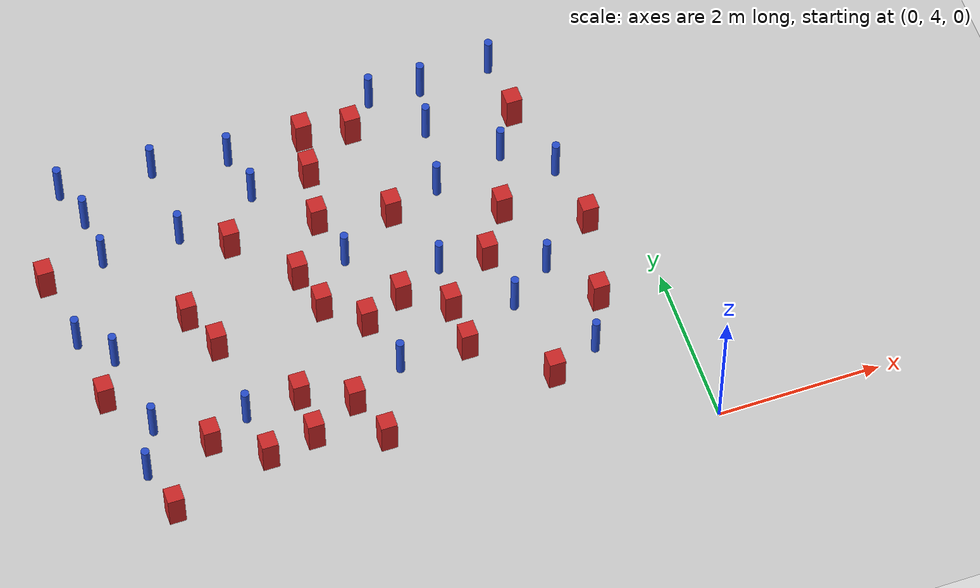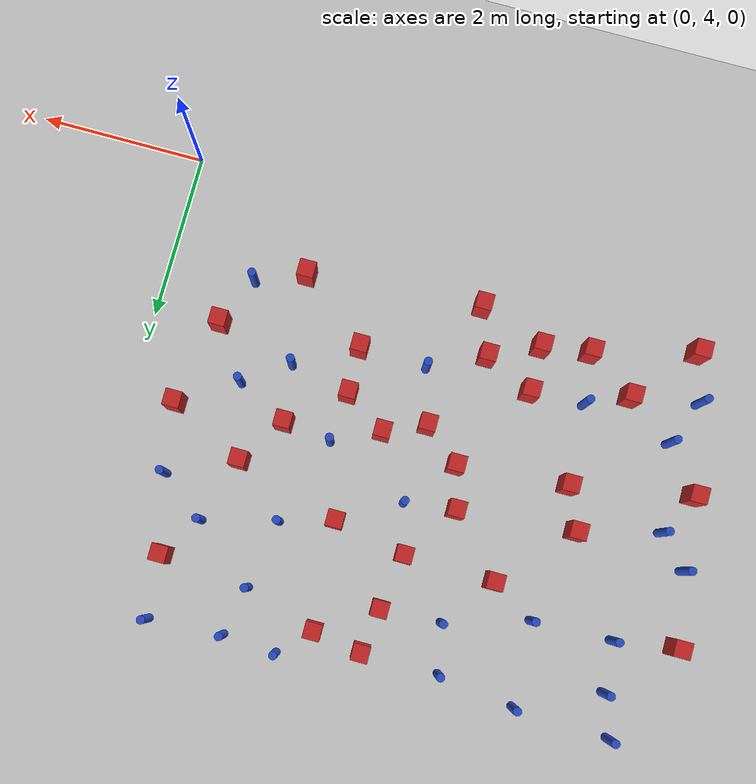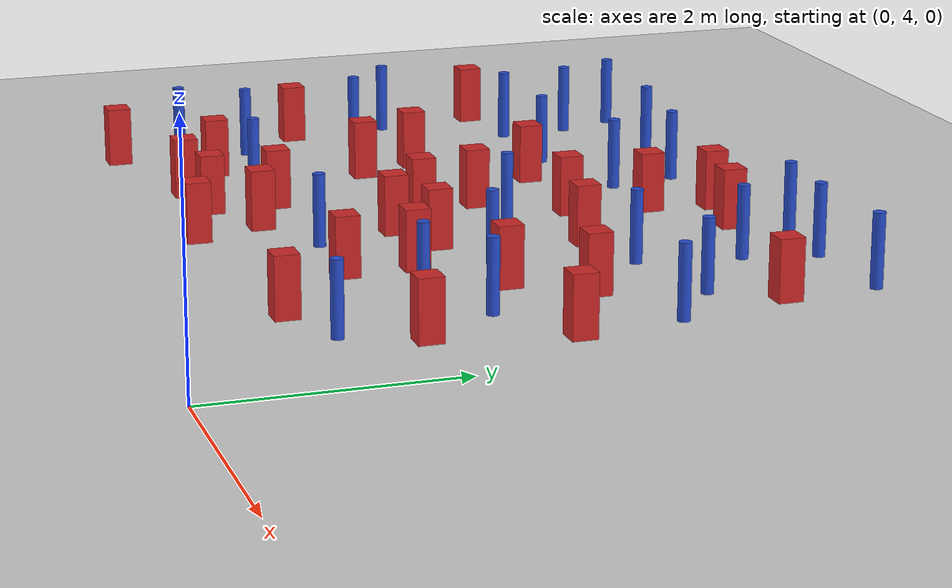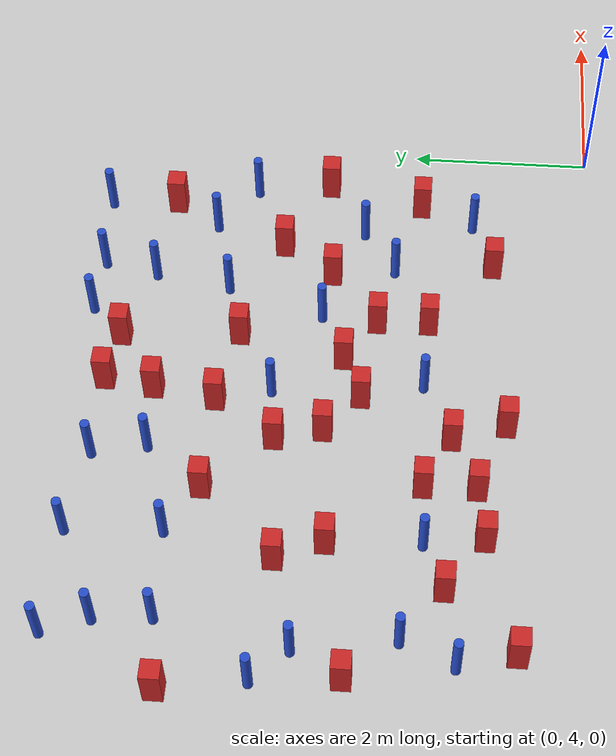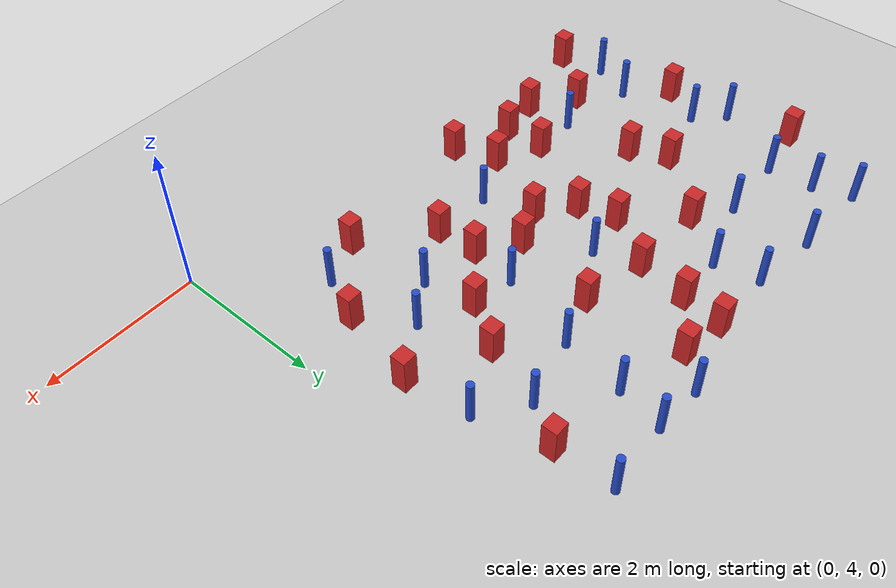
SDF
<sdf version="1.6">
 <world name="default">
  <model name="ground_plane">
   <static>1</static>
   <link name="link">
    <collision name="collision">
     <geometry><plane><normal>0 0 1</normal><size>100 100</size></plane></geometry>
     <surface><friction><ode><mu>100</mu><mu2>50</mu2></ode></friction></surface>
    </collision>
    <visual name="visual">
     <cast_shadows>0</cast_shadows>
     <geometry><plane><normal>0 0 1</normal><size>100 100</size></plane></geometry>
     <material>
      <ambient>1.0 1.0 1.0 1.0</ambient>
      <diffuse>0.8 0.8 0.8 1.0</diffuse>
      <specular>0.01 0.01 0.01 1.000000</specular>
     </material>
    </visual>
   </link>
  </model>
  <model name="pole_obstacle5">
   <static>true</static>
   <pose>-1.9876738178 8.84588879229 -9.47619616065e-06 5.49618799737e-07 2.36310414046e-07 -1.55090534809e-07</pose>
   <link name="link">
    <pose>0 0 0.3 0 -0 0</pose>
    <inertial>
     <mass>1</mass>
     <inertia><ixx>0.145833</ixx><ixy>0</ixy><ixz>0</ixz><iyy>0.145833</iyy><iyz>0</iyz><izz>0.125</izz></inertia>
    </inertial>
    <collision name="collision">
     <geometry><cylinder><radius>0.05</radius><length>.6</length></cylinder></geometry>
    </collision>
    <visual name="visual">
     <geometry><cylinder><radius>0.05</radius><length>.6</length></cylinder></geometry>
     <material>
      <script><name>Gazebo/Blue</name><uri>file://media/materials/scripts/gazebo.material</uri></script>
     </material>
    </visual>
   </link>
  </model>
  <model name="square_post_obstacle7">
   <static>true</static>
   <pose>-3.64312884776 7.99833205098 -6.11067671241e-07 -5.50515727128e-06 -8.79689657224e-07 2.37013304536e-05</pose>
   <link name="link">
    <pose>0 0 0.25 0 -0 0</pose>
    <inertial>
     <mass>100</mass>
     <inertia>
      <ixx>0.166667</ixx>
      <ixy>0</ixy>
      <ixz>0</ixz>
      <iyy>0.166667</iyy>
      <iyz>0</iyz>
      <izz>0.166667</izz>
     </inertia>
    </inertial>
    <collision name="collision"><geometry><box><size>.2 .2 .5</size></box></geometry></collision>
    <visual name="visual">
     <geometry><box><size>.2 .2 .5</size></box></geometry>
     <material>
      <script><name>Gazebo/Red</name><uri>file://media/materials/scripts/gazebo.material</uri></script>
     </material>
    </visual>
   </link>
  </model>
  <model name="square_post_obstacle13">
   <static>true</static>
   <pose>-0.571490426426 6.97470407027 -6.11067671241e-07 -5.50515727128e-06 -8.79689657224e-07 2.37013304536e-05</pose>
   <link name="link">
    <pose>0 0 0.25 0 -0 0</pose>
    <inertial>
     <mass>100</mass>
     <inertia>
      <ixx>0.166667</ixx>
      <ixy>0</ixy>
      <ixz>0</ixz>
      <iyy>0.166667</iyy>
      <iyz>0</iyz>
      <izz>0.166667</izz>
     </inertia>
    </inertial>
    <collision name="collision"><geometry><box><size>.2 .2 .5</size></box></geometry></collision>
    <visual name="visual">
     <geometry><box><size>.2 .2 .5</size></box></geometry>
     <material>
      <script><name>Gazebo/Red</name><uri>file://media/materials/scripts/gazebo.material</uri></script>
     </material>
    </visual>
   </link>
  </model>
  <model name="square_post_obstacle17">
   <static>true</static>
   <pose>-5.74236140276 5.49527199091 -6.11067671241e-07 -5.50515727128e-06 -8.79689657224e-07 2.37013304536e-05</pose>
   <link name="link">
    <pose>0 0 0.25 0 -0 0</pose>
    <inertial>
     <mass>100</mass>
     <inertia>
      <ixx>0.166667</ixx>
      <ixy>0</ixy>
      <ixz>0</ixz>
      <iyy>0.166667</iyy>
      <iyz>0</iyz>
      <izz>0.166667</izz>
     </inertia>
    </inertial>
    <collision name="collision"><geometry><box><size>.2 .2 .5</size></box></geometry></collision>
    <visual name="visual">
     <geometry><box><size>.2 .2 .5</size></box></geometry>
     <material>
      <script><name>Gazebo/Red</name><uri>file://media/materials/scripts/gazebo.material</uri></script>
     </material>
    </visual>
   </link>
  </model>
  <model name="pole_obstacle12">
   <static>true</static>
   <pose>-1.068073735 5.31362220871 -9.47619616065e-06 5.49618799737e-07 2.36310414061e-07 -1.550905348e-07</pose>
   <link name="link">
    <pose>0 0 0.3 0 -0 0</pose>
    <inertial>
     <mass>1</mass>
     <inertia><ixx>0.145833</ixx><ixy>0</ixy><ixz>0</ixz><iyy>0.145833</iyy><iyz>0</iyz><izz>0.125</izz></inertia>
    </inertial>
    <collision name="collision">
     <geometry><cylinder><radius>0.05</radius><length>.6</length></cylinder></geometry>
    </collision>
    <visual name="visual">
     <geometry><cylinder><radius>0.05</radius><length>.6</length></cylinder></geometry>
     <material>
      <script><name>Gazebo/Blue</name><uri>file://media/materials/scripts/gazebo.material</uri></script>
     </material>
    </visual>
   </link>
  </model>
  <model name="square_post_obstacle22">
   <static>true</static>
   <pose>-3.02506036199 6.66986125307 -6.11067671241e-07 -5.50515727128e-06 -8.79689657224e-07 2.37013304536e-05</pose>
   <link name="link">
    <pose>0 0 0.25 0 -0 0</pose>
    <inertial>
     <mass>100</mass>
     <inertia>
      <ixx>0.166667</ixx>
      <ixy>0</ixy>
      <ixz>0</ixz>
      <iyy>0.166667</iyy>
      <iyz>0</iyz>
      <izz>0.166667</izz>
     </inertia>
    </inertial>
    <collision name="collision"><geometry><box><size>.2 .2 .5</size></box></geometry></collision>
    <visual name="visual">
     <geometry><box><size>.2 .2 .5</size></box></geometry>
     <material>
      <script><name>Gazebo/Red</name><uri>file://media/materials/scripts/gazebo.material</uri></script>
     </material>
    </visual>
   </link>
  </model>
  <model name="pole_obstacle31">
   <static>true</static>
   <pose>-1.24656648202 6.54154218155 -9.47619616065e-06 5.49618799737e-07 2.36310414061e-07 -1.550905348e-07</pose>
   <link name="link">
    <pose>0 0 0.3 0 -0 0</pose>
    <inertial>
     <mass>1</mass>
     <inertia><ixx>0.145833</ixx><ixy>0</ixy><ixz>0</ixz><iyy>0.145833</iyy><iyz>0</iyz><izz>0.125</izz></inertia>
    </inertial>
    <collision name="collision">
     <geometry><cylinder><radius>0.05</radius><length>.6</length></cylinder></geometry>
    </collision>
    <visual name="visual">
     <geometry><cylinder><radius>0.05</radius><length>.6</length></cylinder></geometry>
     <material>
      <script><name>Gazebo/Blue</name><uri>file://media/materials/scripts/gazebo.material</uri></script>
     </material>
    </visual>
   </link>
  </model>
  <model name="pole_obstacle38">
   <static>true</static>
   <pose>-5.26253510397 8.34487093791 -9.47619616065e-06 5.49618799737e-07 2.36310414065e-07 -1.55090534796e-07</pose>
   <link name="link">
    <pose>0 0 0.3 0 -0 0</pose>
    <inertial>
     <mass>1</mass>
     <inertia><ixx>0.145833</ixx><ixy>0</ixy><ixz>0</ixz><iyy>0.145833</iyy><iyz>0</iyz><izz>0.125</izz></inertia>
    </inertial>
    <collision name="collision">
     <geometry><cylinder><radius>0.05</radius><length>.6</length></cylinder></geometry>
    </collision>
    <visual name="visual">
     <geometry><cylinder><radius>0.05</radius><length>.6</length></cylinder></geometry>
     <material>
      <script><name>Gazebo/Blue</name><uri>file://media/materials/scripts/gazebo.material</uri></script>
     </material>
    </visual>
   </link>
  </model>
  <model name="pole_obstacle42">
   <static>true</static>
   <pose>-6.47705012342 6.95727942496 -9.47619616065e-06 5.49618799737e-07 2.36310414037e-07 -1.55090534814e-07</pose>
   <link name="link">
    <pose>0 0 0.3 0 -0 0</pose>
    <inertial>
     <mass>1</mass>
     <inertia><ixx>0.145833</ixx><ixy>0</ixy><ixz>0</ixz><iyy>0.145833</iyy><iyz>0</iyz><izz>0.125</izz></inertia>
    </inertial>
    <collision name="collision">
     <geometry><cylinder><radius>0.05</radius><length>.6</length></cylinder></geometry>
    </collision>
    <visual name="visual">
     <geometry><cylinder><radius>0.05</radius><length>.6</length></cylinder></geometry>
     <material>
      <script><name>Gazebo/Blue</name><uri>file://media/materials/scripts/gazebo.material</uri></script>
     </material>
    </visual>
   </link>
  </model>
  <model name="square_post_obstacle40">
   <static>true</static>
   <pose>-4.72908648824 8.02325316709 -6.11067671241e-07 -5.50515727128e-06 -8.79689657224e-07 2.37013304536e-05</pose>
   <link name="link">
    <pose>0 0 0.25 0 -0 0</pose>
    <inertial>
     <mass>100</mass>
     <inertia>
      <ixx>0.166667</ixx>
      <ixy>0</ixy>
      <ixz>0</ixz>
      <iyy>0.166667</iyy>
      <iyz>0</iyz>
      <izz>0.166667</izz>
     </inertia>
    </inertial>
    <collision name="collision"><geometry><box><size>.2 .2 .5</size></box></geometry></collision>
    <visual name="visual">
     <geometry><box><size>.2 .2 .5</size></box></geometry>
     <material>
      <script><name>Gazebo/Red</name><uri>file://media/materials/scripts/gazebo.material</uri></script>
     </material>
    </visual>
   </link>
  </model>
  <model name="pole_obstacle44">
   <static>true</static>
   <pose>-1.24157425304 8.23455370973 -9.47619616065e-06 5.49618799737e-07 2.36310414046e-07 -1.55090534809e-07</pose>
   <link name="link">
    <pose>0 0 0.3 0 -0 0</pose>
    <inertial>
     <mass>1</mass>
     <inertia><ixx>0.145833</ixx><ixy>0</ixy><ixz>0</ixz><iyy>0.145833</iyy><iyz>0</iyz><izz>0.125</izz></inertia>
    </inertial>
    <collision name="collision">
     <geometry><cylinder><radius>0.05</radius><length>.6</length></cylinder></geometry>
    </collision>
    <visual name="visual">
     <geometry><cylinder><radius>0.05</radius><length>.6</length></cylinder></geometry>
     <material>
      <script><name>Gazebo/Blue</name><uri>file://media/materials/scripts/gazebo.material</uri></script>
     </material>
    </visual>
   </link>
  </model>
  <model name="square_post_obstacle50">
   <static>true</static>
   <pose>-0.816443622468 5.90792600944 -6.11067671241e-07 -5.50515727128e-06 -8.79689657224e-07 2.37013304536e-05</pose>
   <link name="link">
    <pose>0 0 0.25 0 -0 0</pose>
    <inertial>
     <mass>100</mass>
     <inertia>
      <ixx>0.166667</ixx>
      <ixy>0</ixy>
      <ixz>0</ixz>
      <iyy>0.166667</iyy>
      <iyz>0</iyz>
      <izz>0.166667</izz>
     </inertia>
    </inertial>
    <collision name="collision"><geometry><box><size>.2 .2 .5</size></box></geometry></collision>
    <visual name="visual">
     <geometry><box><size>.2 .2 .5</size></box></geometry>
     <material>
      <script><name>Gazebo/Red</name><uri>file://media/materials/scripts/gazebo.material</uri></script>
     </material>
    </visual>
   </link>
  </model>
  <model name="square_post_obstacle53">
   <static>true</static>
   <pose>-5.29129763598 6.70580122499 -6.11067671241e-07 -5.50515727128e-06 -8.79689657224e-07 2.37013304536e-05</pose>
   <link name="link">
    <pose>0 0 0.25 0 -0 0</pose>
    <inertial>
     <mass>100</mass>
     <inertia>
      <ixx>0.166667</ixx>
      <ixy>0</ixy>
      <ixz>0</ixz>
      <iyy>0.166667</iyy>
      <iyz>0</iyz>
      <izz>0.166667</izz>
     </inertia>
    </inertial>
    <collision name="collision"><geometry><box><size>.2 .2 .5</size></box></geometry></collision>
    <visual name="visual">
     <geometry><box><size>.2 .2 .5</size></box></geometry>
     <material>
      <script><name>Gazebo/Red</name><uri>file://media/materials/scripts/gazebo.material</uri></script>
     </material>
    </visual>
   </link>
  </model>
  <model name="pole_obstacle52">
   <static>true</static>
   <pose>-2.45928907911 6.94355914943 -9.47619616065e-06 5.49618799738e-07 2.3631041406e-07 -1.55090534801e-07</pose>
   <link name="link">
    <pose>0 0 0.3 0 -0 0</pose>
    <inertial>
     <mass>1</mass>
     <inertia><ixx>0.145833</ixx><ixy>0</ixy><ixz>0</ixz><iyy>0.145833</iyy><iyz>0</iyz><izz>0.125</izz></inertia>
    </inertial>
    <collision name="collision">
     <geometry><cylinder><radius>0.05</radius><length>.6</length></cylinder></geometry>
    </collision>
    <visual name="visual">
     <geometry><cylinder><radius>0.05</radius><length>.6</length></cylinder></geometry>
     <material>
      <script><name>Gazebo/Blue</name><uri>file://media/materials/scripts/gazebo.material</uri></script>
     </material>
    </visual>
   </link>
  </model>
  <model name="square_post_obstacle56">
   <static>true</static>
   <pose>-4.5759710726 5.18996680981 -6.11067671241e-07 -5.50515727128e-06 -8.79689657224e-07 2.37013304536e-05</pose>
   <link name="link">
    <pose>0 0 0.25 0 -0 0</pose>
    <inertial>
     <mass>100</mass>
     <inertia>
      <ixx>0.166667</ixx>
      <ixy>0</ixy>
      <ixz>0</ixz>
      <iyy>0.166667</iyy>
      <iyz>0</iyz>
      <izz>0.166667</izz>
     </inertia>
    </inertial>
    <collision name="collision"><geometry><box><size>.2 .2 .5</size></box></geometry></collision>
    <visual name="visual">
     <geometry><box><size>.2 .2 .5</size></box></geometry>
     <material>
      <script><name>Gazebo/Red</name><uri>file://media/materials/scripts/gazebo.material</uri></script>
     </material>
    </visual>
   </link>
  </model>
  <model name="square_post_obstacle60">
   <static>true</static>
   <pose>-3.9601281426 6.82564002016 -6.11067671241e-07 -5.50515727128e-06 -8.79689657224e-07 2.37013304536e-05</pose>
   <link name="link">
    <pose>0 0 0.25 0 -0 0</pose>
    <inertial>
     <mass>100</mass>
     <inertia>
      <ixx>0.166667</ixx>
      <ixy>0</ixy>
      <ixz>0</ixz>
      <iyy>0.166667</iyy>
      <iyz>0</iyz>
      <izz>0.166667</izz>
     </inertia>
    </inertial>
    <collision name="collision"><geometry><box><size>.2 .2 .5</size></box></geometry></collision>
    <visual name="visual">
     <geometry><box><size>.2 .2 .5</size></box></geometry>
     <material>
      <script><name>Gazebo/Red</name><uri>file://media/materials/scripts/gazebo.material</uri></script>
     </material>
    </visual>
   </link>
  </model>
  <model name="pole_obstacle57">
   <static>true</static>
   <pose>-6.32006095279 5.9100668461 -9.47619616065e-06 5.49618799737e-07 2.36310414037e-07 -1.55090534814e-07</pose>
   <link name="link">
    <pose>0 0 0.3 0 -0 0</pose>
    <inertial>
     <mass>1</mass>
     <inertia><ixx>0.145833</ixx><ixy>0</ixy><ixz>0</ixz><iyy>0.145833</iyy><iyz>0</iyz><izz>0.125</izz></inertia>
    </inertial>
    <collision name="collision">
     <geometry><cylinder><radius>0.05</radius><length>.6</length></cylinder></geometry>
    </collision>
    <visual name="visual">
     <geometry><cylinder><radius>0.05</radius><length>.6</length></cylinder></geometry>
     <material>
      <script><name>Gazebo/Blue</name><uri>file://media/materials/scripts/gazebo.material</uri></script>
     </material>
    </visual>
   </link>
  </model>
  <model name="pole_obstacle71">
   <static>true</static>
   <pose>-0.683955260598 7.814796921 -9.47619616065e-06 5.49618799737e-07 2.36310414065e-07 -1.55090534796e-07</pose>
   <link name="link">
    <pose>0 0 0.3 0 -0 0</pose>
    <inertial>
     <mass>1</mass>
     <inertia><ixx>0.145833</ixx><ixy>0</ixy><ixz>0</ixz><iyy>0.145833</iyy><iyz>0</iyz><izz>0.125</izz></inertia>
    </inertial>
    <collision name="collision">
     <geometry><cylinder><radius>0.05</radius><length>.6</length></cylinder></geometry>
    </collision>
    <visual name="visual">
     <geometry><cylinder><radius>0.05</radius><length>.6</length></cylinder></geometry>
     <material>
      <script><name>Gazebo/Blue</name><uri>file://media/materials/scripts/gazebo.material</uri></script>
     </material>
    </visual>
   </link>
  </model>
  <model name="pole_obstacle76">
   <static>true</static>
   <pose>-6.5542606604 5.35597378822 -9.47619616065e-06 5.49618799737e-07 2.36310414037e-07 -1.55090534814e-07</pose>
   <link name="link">
    <pose>0 0 0.3 0 -0 0</pose>
    <inertial>
     <mass>1</mass>
     <inertia><ixx>0.145833</ixx><ixy>0</ixy><ixz>0</ixz><iyy>0.145833</iyy><iyz>0</iyz><izz>0.125</izz></inertia>
    </inertial>
    <collision name="collision">
     <geometry><cylinder><radius>0.05</radius><length>.6</length></cylinder></geometry>
    </collision>
    <visual name="visual">
     <geometry><cylinder><radius>0.05</radius><length>.6</length></cylinder></geometry>
     <material>
      <script><name>Gazebo/Blue</name><uri>file://media/materials/scripts/gazebo.material</uri></script>
     </material>
    </visual>
   </link>
  </model>
  <model name="square_post_obstacle79">
   <static>true</static>
   <pose>-3.98790024047 5.47207742399 -6.11067671241e-07 -5.50515727128e-06 -8.79689657224e-07 2.37013304536e-05</pose>
   <link name="link">
    <pose>0 0 0.25 0 -0 0</pose>
    <inertial>
     <mass>100</mass>
     <inertia>
      <ixx>0.166667</ixx>
      <ixy>0</ixy>
      <ixz>0</ixz>
      <iyy>0.166667</iyy>
      <iyz>0</iyz>
      <izz>0.166667</izz>
     </inertia>
    </inertial>
    <collision name="collision"><geometry><box><size>.2 .2 .5</size></box></geometry></collision>
    <visual name="visual">
     <geometry><box><size>.2 .2 .5</size></box></geometry>
     <material>
      <script><name>Gazebo/Red</name><uri>file://media/materials/scripts/gazebo.material</uri></script>
     </material>
    </visual>
   </link>
  </model>
  <model name="pole_obstacle87">
   <static>true</static>
   <pose>-6.22478200343 8.3180145846 -9.47619616065e-06 5.49618799737e-07 2.36310414065e-07 -1.55090534796e-07</pose>
   <link name="link">
    <pose>0 0 0.3 0 -0 0</pose>
    <inertial>
     <mass>1</mass>
     <inertia><ixx>0.145833</ixx><ixy>0</ixy><ixz>0</ixz><iyy>0.145833</iyy><iyz>0</iyz><izz>0.125</izz></inertia>
    </inertial>
    <collision name="collision">
     <geometry><cylinder><radius>0.05</radius><length>.6</length></cylinder></geometry>
    </collision>
    <visual name="visual">
     <geometry><cylinder><radius>0.05</radius><length>.6</length></cylinder></geometry>
     <material>
      <script><name>Gazebo/Blue</name><uri>file://media/materials/scripts/gazebo.material</uri></script>
     </material>
    </visual>
   </link>
  </model>
  <model name="pole_obstacle88">
   <static>true</static>
   <pose>-3.32723464884 5.7886832403 -9.4761961606e-06 5.49618799729e-07 2.36310414006e-07 -1.55090534822e-07</pose>
   <link name="link">
    <pose>0 0 0.3 0 -0 0</pose>
    <inertial>
     <mass>1</mass>
     <inertia><ixx>0.145833</ixx><ixy>0</ixy><ixz>0</ixz><iyy>0.145833</iyy><iyz>0</iyz><izz>0.125</izz></inertia>
    </inertial>
    <collision name="collision">
     <geometry><cylinder><radius>0.05</radius><length>.6</length></cylinder></geometry>
    </collision>
    <visual name="visual">
     <geometry><cylinder><radius>0.05</radius><length>.6</length></cylinder></geometry>
     <material>
      <script><name>Gazebo/Blue</name><uri>file://media/materials/scripts/gazebo.material</uri></script>
     </material>
    </visual>
   </link>
  </model>
  <model name="pole_obstacle91">
   <static>true</static>
   <pose>-6.27176562924 8.91925616962 -9.47619616065e-06 5.49618799737e-07 2.36310414065e-07 -1.55090534796e-07</pose>
   <link name="link">
    <pose>0 0 0.3 0 -0 0</pose>
    <inertial>
     <mass>1</mass>
     <inertia><ixx>0.145833</ixx><ixy>0</ixy><ixz>0</ixz><iyy>0.145833</iyy><iyz>0</iyz><izz>0.125</izz></inertia>
    </inertial>
    <collision name="collision">
     <geometry><cylinder><radius>0.05</radius><length>.6</length></cylinder></geometry>
    </collision>
    <visual name="visual">
     <geometry><cylinder><radius>0.05</radius><length>.6</length></cylinder></geometry>
     <material>
      <script><name>Gazebo/Blue</name><uri>file://media/materials/scripts/gazebo.material</uri></script>
     </material>
    </visual>
   </link>
  </model>
  <model name="pole_obstacle92">
   <static>true</static>
   <pose>-1.85955419458 9.44289425128 -9.47619616065e-06 5.49618799737e-07 2.36310414046e-07 -1.55090534809e-07</pose>
   <link name="link">
    <pose>0 0 0.3 0 -0 0</pose>
    <inertial>
     <mass>1</mass>
     <inertia><ixx>0.145833</ixx><ixy>0</ixy><ixz>0</ixz><iyy>0.145833</iyy><iyz>0</iyz><izz>0.125</izz></inertia>
    </inertial>
    <collision name="collision">
     <geometry><cylinder><radius>0.05</radius><length>.6</length></cylinder></geometry>
    </collision>
    <visual name="visual">
     <geometry><cylinder><radius>0.05</radius><length>.6</length></cylinder></geometry>
     <material>
      <script><name>Gazebo/Blue</name><uri>file://media/materials/scripts/gazebo.material</uri></script>
     </material>
    </visual>
   </link>
  </model>
  <model name="square_post_obstacle87">
   <static>true</static>
   <pose>-2.51712326753 6.33169471152 -6.11067671241e-07 -5.50515727128e-06 -8.79689657224e-07 2.37013304536e-05</pose>
   <link name="link">
    <pose>0 0 0.25 0 -0 0</pose>
    <inertial>
     <mass>100</mass>
     <inertia>
      <ixx>0.166667</ixx>
      <ixy>0</ixy>
      <ixz>0</ixz>
      <iyy>0.166667</iyy>
      <iyz>0</iyz>
      <izz>0.166667</izz>
     </inertia>
    </inertial>
    <collision name="collision"><geometry><box><size>.2 .2 .5</size></box></geometry></collision>
    <visual name="visual">
     <geometry><box><size>.2 .2 .5</size></box></geometry>
     <material>
      <script><name>Gazebo/Red</name><uri>file://media/materials/scripts/gazebo.material</uri></script>
     </material>
    </visual>
   </link>
  </model>
  <model name="pole_obstacle97">
   <static>true</static>
   <pose>-5.3037369265 9.35501213935 -9.47619616065e-06 5.49618799737e-07 2.36310414065e-07 -1.55090534796e-07</pose>
   <link name="link">
    <pose>0 0 0.3 0 -0 0</pose>
    <inertial>
     <mass>1</mass>
     <inertia><ixx>0.145833</ixx><ixy>0</ixy><ixz>0</ixz><iyy>0.145833</iyy><iyz>0</iyz><izz>0.125</izz></inertia>
    </inertial>
    <collision name="collision">
     <geometry><cylinder><radius>0.05</radius><length>.6</length></cylinder></geometry>
    </collision>
    <visual name="visual">
     <geometry><cylinder><radius>0.05</radius><length>.6</length></cylinder></geometry>
     <material>
      <script><name>Gazebo/Blue</name><uri>file://media/materials/scripts/gazebo.material</uri></script>
     </material>
    </visual>
   </link>
  </model>
  <model name="pole_obstacle110">
   <static>true</static>
   <pose>-4.26408805013 8.64378990391 -9.47619616065e-06 5.49618799737e-07 2.36310414065e-07 -1.55090534796e-07</pose>
   <link name="link">
    <pose>0 0 0.3 0 -0 0</pose>
    <inertial>
     <mass>1</mass>
     <inertia><ixx>0.145833</ixx><ixy>0</ixy><ixz>0</ixz><iyy>0.145833</iyy><iyz>0</iyz><izz>0.125</izz></inertia>
    </inertial>
    <collision name="collision">
     <geometry><cylinder><radius>0.05</radius><length>.6</length></cylinder></geometry>
    </collision>
    <visual name="visual">
     <geometry><cylinder><radius>0.05</radius><length>.6</length></cylinder></geometry>
     <material>
      <script><name>Gazebo/Blue</name><uri>file://media/materials/scripts/gazebo.material</uri></script>
     </material>
    </visual>
   </link>
  </model>
  <model name="square_post_obstacle99">
   <static>true</static>
   <pose>-4.09479227088 7.33348866477 -6.11067671241e-07 -5.50515727128e-06 -8.79689657224e-07 2.37013304536e-05</pose>
   <link name="link">
    <pose>0 0 0.25 0 -0 0</pose>
    <inertial>
     <mass>100</mass>
     <inertia>
      <ixx>0.166667</ixx>
      <ixy>0</ixy>
      <ixz>0</ixz>
      <iyy>0.166667</iyy>
      <iyz>0</iyz>
      <izz>0.166667</izz>
     </inertia>
    </inertial>
    <collision name="collision"><geometry><box><size>.2 .2 .5</size></box></geometry></collision>
    <visual name="visual">
     <geometry><box><size>.2 .2 .5</size></box></geometry>
     <material>
      <script><name>Gazebo/Red</name><uri>file://media/materials/scripts/gazebo.material</uri></script>
     </material>
    </visual>
   </link>
  </model>
  <model name="square_post_obstacle103">
   <static>true</static>
   <pose>-2.85878793254 9.11552349727 -6.11067671241e-07 -5.50515727128e-06 -8.79689657224e-07 2.37013304536e-05</pose>
   <link name="link">
    <pose>0 0 0.25 0 -0 0</pose>
    <inertial>
     <mass>100</mass>
     <inertia>
      <ixx>0.166667</ixx>
      <ixy>0</ixy>
      <ixz>0</ixz>
      <iyy>0.166667</iyy>
      <iyz>0</iyz>
      <izz>0.166667</izz>
     </inertia>
    </inertial>
    <collision name="collision"><geometry><box><size>.2 .2 .5</size></box></geometry></collision>
    <visual name="visual">
     <geometry><box><size>.2 .2 .5</size></box></geometry>
     <material>
      <script><name>Gazebo/Red</name><uri>file://media/materials/scripts/gazebo.material</uri></script>
     </material>
    </visual>
   </link>
  </model>
  <model name="pole_obstacle121">
   <static>true</static>
   <pose>-4.38298074194 9.22289108084 -9.47619616065e-06 5.49618799737e-07 2.36310414065e-07 -1.55090534796e-07</pose>
   <link name="link">
    <pose>0 0 0.3 0 -0 0</pose>
    <inertial>
     <mass>1</mass>
     <inertia><ixx>0.145833</ixx><ixy>0</ixy><ixz>0</ixz><iyy>0.145833</iyy><iyz>0</iyz><izz>0.125</izz></inertia>
    </inertial>
    <collision name="collision">
     <geometry><cylinder><radius>0.05</radius><length>.6</length></cylinder></geometry>
    </collision>
    <visual name="visual">
     <geometry><cylinder><radius>0.05</radius><length>.6</length></cylinder></geometry>
     <material>
      <script><name>Gazebo/Blue</name><uri>file://media/materials/scripts/gazebo.material</uri></script>
     </material>
    </visual>
   </link>
  </model>
  <model name="square_post_obstacle120">
   <static>true</static>
   <pose>-2.76711007917 7.82119560167 -6.11067671241e-07 -5.50515727128e-06 -8.79689657224e-07 2.37013304536e-05</pose>
   <link name="link">
    <pose>0 0 0.25 0 -0 0</pose>
    <inertial>
     <mass>100</mass>
     <inertia>
      <ixx>0.166667</ixx>
      <ixy>0</ixy>
      <ixz>0</ixz>
      <iyy>0.166667</iyy>
      <iyz>0</iyz>
      <izz>0.166667</izz>
     </inertia>
    </inertial>
    <collision name="collision"><geometry><box><size>.2 .2 .5</size></box></geometry></collision>
    <visual name="visual">
     <geometry><box><size>.2 .2 .5</size></box></geometry>
     <material>
      <script><name>Gazebo/Red</name><uri>file://media/materials/scripts/gazebo.material</uri></script>
     </material>
    </visual>
   </link>
  </model>
  <model name="square_post_obstacle122">
   <static>true</static>
   <pose>-3.78546883008 4.89981274744 -6.11067671241e-07 -5.50515727128e-06 -8.79689657224e-07 2.37013304536e-05</pose>
   <link name="link">
    <pose>0 0 0.25 0 -0 0</pose>
    <inertial>
     <mass>100</mass>
     <inertia>
      <ixx>0.166667</ixx>
      <ixy>0</ixy>
      <ixz>0</ixz>
      <iyy>0.166667</iyy>
      <iyz>0</iyz>
      <izz>0.166667</izz>
     </inertia>
    </inertial>
    <collision name="collision"><geometry><box><size>.2 .2 .5</size></box></geometry></collision>
    <visual name="visual">
     <geometry><box><size>.2 .2 .5</size></box></geometry>
     <material>
      <script><name>Gazebo/Red</name><uri>file://media/materials/scripts/gazebo.material</uri></script>
     </material>
    </visual>
   </link>
  </model>
  <model name="square_post_obstacle126">
   <static>true</static>
   <pose>-4.57988446247 5.75037690644 -6.11067671241e-07 -5.50515727128e-06 -8.79689657224e-07 2.37013304536e-05</pose>
   <link name="link">
    <pose>0 0 0.25 0 -0 0</pose>
    <inertial>
     <mass>100</mass>
     <inertia>
      <ixx>0.166667</ixx>
      <ixy>0</ixy>
      <ixz>0</ixz>
      <iyy>0.166667</iyy>
      <iyz>0</iyz>
      <izz>0.166667</izz>
     </inertia>
    </inertial>
    <collision name="collision"><geometry><box><size>.2 .2 .5</size></box></geometry></collision>
    <visual name="visual">
     <geometry><box><size>.2 .2 .5</size></box></geometry>
     <material>
      <script><name>Gazebo/Red</name><uri>file://media/materials/scripts/gazebo.material</uri></script>
     </material>
    </visual>
   </link>
  </model>
  <model name="square_post_obstacle131">
   <static>true</static>
   <pose>-0.922594318811 8.73279701796 -6.11067671241e-07 -5.50515727128e-06 -8.79689657224e-07 2.37013304536e-05</pose>
   <link name="link">
    <pose>0 0 0.25 0 -0 0</pose>
    <inertial>
     <mass>100</mass>
     <inertia>
      <ixx>0.166667</ixx>
      <ixy>0</ixy>
      <ixz>0</ixz>
      <iyy>0.166667</iyy>
      <iyz>0</iyz>
      <izz>0.166667</izz>
     </inertia>
    </inertial>
    <collision name="collision"><geometry><box><size>.2 .2 .5</size></box></geometry></collision>
    <visual name="visual">
     <geometry><box><size>.2 .2 .5</size></box></geometry>
     <material>
      <script><name>Gazebo/Red</name><uri>file://media/materials/scripts/gazebo.material</uri></script>
     </material>
    </visual>
   </link>
  </model>
  <model name="square_post_obstacle133">
   <static>true</static>
   <pose>-5.50497715972 7.20954863813 -6.11067671241e-07 -5.50515727128e-06 -8.79689657224e-07 2.37013304536e-05</pose>
   <link name="link">
    <pose>0 0 0.25 0 -0 0</pose>
    <inertial>
     <mass>100</mass>
     <inertia>
      <ixx>0.166667</ixx>
      <ixy>0</ixy>
      <ixz>0</ixz>
      <iyy>0.166667</iyy>
      <iyz>0</iyz>
      <izz>0.166667</izz>
     </inertia>
    </inertial>
    <collision name="collision"><geometry><box><size>.2 .2 .5</size></box></geometry></collision>
    <visual name="visual">
     <geometry><box><size>.2 .2 .5</size></box></geometry>
     <material>
      <script><name>Gazebo/Red</name><uri>file://media/materials/scripts/gazebo.material</uri></script>
     </material>
    </visual>
   </link>
  </model>
  <model name="pole_obstacle144">
   <static>true</static>
   <pose>-6.44532846928 9.40898575022 -9.47619616065e-06 5.49618799737e-07 2.36310414065e-07 -1.55090534796e-07</pose>
   <link name="link">
    <pose>0 0 0.3 0 -0 0</pose>
    <inertial>
     <mass>1</mass>
     <inertia><ixx>0.145833</ixx><ixy>0</ixy><ixz>0</ixz><iyy>0.145833</iyy><iyz>0</iyz><izz>0.125</izz></inertia>
    </inertial>
    <collision name="collision">
     <geometry><cylinder><radius>0.05</radius><length>.6</length></cylinder></geometry>
    </collision>
    <visual name="visual">
     <geometry><cylinder><radius>0.05</radius><length>.6</length></cylinder></geometry>
     <material>
      <script><name>Gazebo/Blue</name><uri>file://media/materials/scripts/gazebo.material</uri></script>
     </material>
    </visual>
   </link>
  </model>
  <model name="square_post_obstacle153">
   <static>true</static>
   <pose>-1.49607481045 7.43780795278 -6.11067671241e-07 -5.50515727128e-06 -8.79689657224e-07 2.37013304536e-05</pose>
   <link name="link">
    <pose>0 0 0.25 0 -0 0</pose>
    <inertial>
     <mass>100</mass>
     <inertia>
      <ixx>0.166667</ixx>
      <ixy>0</ixy>
      <ixz>0</ixz>
      <iyy>0.166667</iyy>
      <iyz>0</iyz>
      <izz>0.166667</izz>
     </inertia>
    </inertial>
    <collision name="collision"><geometry><box><size>.2 .2 .5</size></box></geometry></collision>
    <visual name="visual">
     <geometry><box><size>.2 .2 .5</size></box></geometry>
     <material>
      <script><name>Gazebo/Red</name><uri>file://media/materials/scripts/gazebo.material</uri></script>
     </material>
    </visual>
   </link>
  </model>
  <model name="pole_obstacle160">
   <static>true</static>
   <pose>-1.77650495085 6.17338525669 -9.47619616065e-06 5.49618799737e-07 2.36310414061e-07 -1.550905348e-07</pose>
   <link name="link">
    <pose>0 0 0.3 0 -0 0</pose>
    <inertial>
     <mass>1</mass>
     <inertia><ixx>0.145833</ixx><ixy>0</ixy><ixz>0</ixz><iyy>0.145833</iyy><iyz>0</iyz><izz>0.125</izz></inertia>
    </inertial>
    <collision name="collision">
     <geometry><cylinder><radius>0.05</radius><length>.6</length></cylinder></geometry>
    </collision>
    <visual name="visual">
     <geometry><cylinder><radius>0.05</radius><length>.6</length></cylinder></geometry>
     <material>
      <script><name>Gazebo/Blue</name><uri>file://media/materials/scripts/gazebo.material</uri></script>
     </material>
    </visual>
   </link>
  </model>
  <model name="square_post_obstacle154">
   <static>true</static>
   <pose>-6.9601488392 8.20452973619 -6.11067671241e-07 -5.50515727128e-06 -8.79689657224e-07 2.37013304536e-05</pose>
   <link name="link">
    <pose>0 0 0.25 0 -0 0</pose>
    <inertial>
     <mass>100</mass>
     <inertia>
      <ixx>0.166667</ixx>
      <ixy>0</ixy>
      <ixz>0</ixz>
      <iyy>0.166667</iyy>
      <iyz>0</iyz>
      <izz>0.166667</izz>
     </inertia>
    </inertial>
    <collision name="collision"><geometry><box><size>.2 .2 .5</size></box></geometry></collision>
    <visual name="visual">
     <geometry><box><size>.2 .2 .5</size></box></geometry>
     <material>
      <script><name>Gazebo/Red</name><uri>file://media/materials/scripts/gazebo.material</uri></script>
     </material>
    </visual>
   </link>
  </model>
  <model name="square_post_obstacle156">
   <static>true</static>
   <pose>-1.66053238759 5.07725928215 -6.11067671241e-07 -5.50515727128e-06 -8.79689657224e-07 2.37013304536e-05</pose>
   <link name="link">
    <pose>0 0 0.25 0 -0 0</pose>
    <inertial>
     <mass>100</mass>
     <inertia>
      <ixx>0.166667</ixx>
      <ixy>0</ixy>
      <ixz>0</ixz>
      <iyy>0.166667</iyy>
      <iyz>0</iyz>
      <izz>0.166667</izz>
     </inertia>
    </inertial>
    <collision name="collision"><geometry><box><size>.2 .2 .5</size></box></geometry></collision>
    <visual name="visual">
     <geometry><box><size>.2 .2 .5</size></box></geometry>
     <material>
      <script><name>Gazebo/Red</name><uri>file://media/materials/scripts/gazebo.material</uri></script>
     </material>
    </visual>
   </link>
  </model>
  <model name="square_post_obstacle157">
   <static>true</static>
   <pose>-3.51598821223 6.45480846181 -6.11067671241e-07 -5.50515727128e-06 -8.79689657224e-07 2.37013304536e-05</pose>
   <link name="link">
    <pose>0 0 0.25 0 -0 0</pose>
    <inertial>
     <mass>100</mass>
     <inertia>
      <ixx>0.166667</ixx>
      <ixy>0</ixy>
      <ixz>0</ixz>
      <iyy>0.166667</iyy>
      <iyz>0</iyz>
      <izz>0.166667</izz>
     </inertia>
    </inertial>
    <collision name="collision"><geometry><box><size>.2 .2 .5</size></box></geometry></collision>
    <visual name="visual">
     <geometry><box><size>.2 .2 .5</size></box></geometry>
     <material>
      <script><name>Gazebo/Red</name><uri>file://media/materials/scripts/gazebo.material</uri></script>
     </material>
    </visual>
   </link>
  </model>
  <model name="square_post_obstacle162">
   <static>true</static>
   <pose>-5.16181933622 5.09980897736 -6.11067671241e-07 -5.50515727128e-06 -8.79689657224e-07 2.37013304536e-05</pose>
   <link name="link">
    <pose>0 0 0.25 0 -0 0</pose>
    <inertial>
     <mass>100</mass>
     <inertia>
      <ixx>0.166667</ixx>
      <ixy>0</ixy>
      <ixz>0</ixz>
      <iyy>0.166667</iyy>
      <iyz>0</iyz>
      <izz>0.166667</izz>
     </inertia>
    </inertial>
    <collision name="collision"><geometry><box><size>.2 .2 .5</size></box></geometry></collision>
    <visual name="visual">
     <geometry><box><size>.2 .2 .5</size></box></geometry>
     <material>
      <script><name>Gazebo/Red</name><uri>file://media/materials/scripts/gazebo.material</uri></script>
     </material>
    </visual>
   </link>
  </model>
  <model name="square_post_obstacle165">
   <static>true</static>
   <pose>-6.3953735584 4.76882363099 -6.11067671241e-07 -5.50515727128e-06 -8.79689657224e-07 2.37013304536e-05</pose>
   <link name="link">
    <pose>0 0 0.25 0 -0 0</pose>
    <inertial>
     <mass>100</mass>
     <inertia>
      <ixx>0.166667</ixx>
      <ixy>0</ixy>
      <ixz>0</ixz>
      <iyy>0.166667</iyy>
      <iyz>0</iyz>
      <izz>0.166667</izz>
     </inertia>
    </inertial>
    <collision name="collision"><geometry><box><size>.2 .2 .5</size></box></geometry></collision>
    <visual name="visual">
     <geometry><box><size>.2 .2 .5</size></box></geometry>
     <material>
      <script><name>Gazebo/Red</name><uri>file://media/materials/scripts/gazebo.material</uri></script>
     </material>
    </visual>
   </link>
  </model>
  <model name="square_post_obstacle167">
   <static>true</static>
   <pose>-3.44992414175 9.20833947235 -6.11067671241e-07 -5.50515727128e-06 -8.79689657224e-07 2.37013304536e-05</pose>
   <link name="link">
    <pose>0 0 0.25 0 -0 0</pose>
    <inertial>
     <mass>100</mass>
     <inertia>
      <ixx>0.166667</ixx>
      <ixy>0</ixy>
      <ixz>0</ixz>
      <iyy>0.166667</iyy>
      <iyz>0</iyz>
      <izz>0.166667</izz>
     </inertia>
    </inertial>
    <collision name="collision"><geometry><box><size>.2 .2 .5</size></box></geometry></collision>
    <visual name="visual">
     <geometry><box><size>.2 .2 .5</size></box></geometry>
     <material>
      <script><name>Gazebo/Red</name><uri>file://media/materials/scripts/gazebo.material</uri></script>
     </material>
    </visual>
   </link>
  </model>
  <model name="square_post_obstacle170">
   <static>true</static>
   <pose>-3.53252428477 8.67221030374 -6.11067671241e-07 -5.50515727128e-06 -8.79689657224e-07 2.37013304536e-05</pose>
   <link name="link">
    <pose>0 0 0.25 0 -0 0</pose>
    <inertial>
     <mass>100</mass>
     <inertia>
      <ixx>0.166667</ixx>
      <ixy>0</ixy>
      <ixz>0</ixz>
      <iyy>0.166667</iyy>
      <iyz>0</iyz>
      <izz>0.166667</izz>
     </inertia>
    </inertial>
    <collision name="collision"><geometry><box><size>.2 .2 .5</size></box></geometry></collision>
    <visual name="visual">
     <geometry><box><size>.2 .2 .5</size></box></geometry>
     <material>
      <script><name>Gazebo/Red</name><uri>file://media/materials/scripts/gazebo.material</uri></script>
     </material>
    </visual>
   </link>
  </model>
  <model name="square_post_obstacle171">
   <static>true</static>
   <pose>-1.87668150059 6.86681527786 -6.11067671241e-07 -5.50515727128e-06 -8.79689657224e-07 2.37013304536e-05</pose>
   <link name="link">
    <pose>0 0 0.25 0 -0 0</pose>
    <inertial>
     <mass>100</mass>
     <inertia>
      <ixx>0.166667</ixx>
      <ixy>0</ixy>
      <ixz>0</ixz>
      <iyy>0.166667</iyy>
      <iyz>0</iyz>
      <izz>0.166667</izz>
     </inertia>
    </inertial>
    <collision name="collision"><geometry><box><size>.2 .2 .5</size></box></geometry></collision>
    <visual name="visual">
     <geometry><box><size>.2 .2 .5</size></box></geometry>
     <material>
      <script><name>Gazebo/Red</name><uri>file://media/materials/scripts/gazebo.material</uri></script>
     </material>
    </visual>
   </link>
  </model>
  <model name="pole_obstacle185">
   <static>true</static>
   <pose>-2.12895100246 8.01032049386 -9.47619616065e-06 5.49618799737e-07 2.3631041406e-07 -1.55090534799e-07</pose>
   <link name="link">
    <pose>0 0 0.3 0 -0 0</pose>
    <inertial>
     <mass>1</mass>
     <inertia><ixx>0.145833</ixx><ixy>0</ixy><ixz>0</ixz><iyy>0.145833</iyy><iyz>0</iyz><izz>0.125</izz></inertia>
    </inertial>
    <collision name="collision">
     <geometry><cylinder><radius>0.05</radius><length>.6</length></cylinder></geometry>
    </collision>
    <visual name="visual">
     <geometry><cylinder><radius>0.05</radius><length>.6</length></cylinder></geometry>
     <material>
      <script><name>Gazebo/Blue</name><uri>file://media/materials/scripts/gazebo.material</uri></script>
     </material>
    </visual>
   </link>
  </model>
  <model name="square_post_obstacle175">
   <static>true</static>
   <pose>-2.50312139834 5.76779043555 -6.11067671241e-07 -5.50515727128e-06 -8.79689657224e-07 2.37013304536e-05</pose>
   <link name="link">
    <pose>0 0 0.25 0 -0 0</pose>
    <inertial>
     <mass>100</mass>
     <inertia>
      <ixx>0.166667</ixx>
      <ixy>0</ixy>
      <ixz>0</ixz>
      <iyy>0.166667</iyy>
      <iyz>0</iyz>
      <izz>0.166667</izz>
     </inertia>
    </inertial>
    <collision name="collision"><geometry><box><size>.2 .2 .5</size></box></geometry></collision>
    <visual name="visual">
     <geometry><box><size>.2 .2 .5</size></box></geometry>
     <material>
      <script><name>Gazebo/Red</name><uri>file://media/materials/scripts/gazebo.material</uri></script>
     </material>
    </visual>
   </link>
  </model>
  <model name="square_post_obstacle178">
   <static>true</static>
   <pose>-6.74184391555 6.44155104597 -6.11067671241e-07 -5.50515727128e-06 -8.79689657224e-07 2.37013304536e-05</pose>
   <link name="link">
    <pose>0 0 0.25 0 -0 0</pose>
    <inertial>
     <mass>100</mass>
     <inertia>
      <ixx>0.166667</ixx>
      <ixy>0</ixy>
      <ixz>0</ixz>
      <iyy>0.166667</iyy>
      <iyz>0</iyz>
      <izz>0.166667</izz>
     </inertia>
    </inertial>
    <collision name="collision"><geometry><box><size>.2 .2 .5</size></box></geometry></collision>
    <visual name="visual">
     <geometry><box><size>.2 .2 .5</size></box></geometry>
     <material>
      <script><name>Gazebo/Red</name><uri>file://media/materials/scripts/gazebo.material</uri></script>
     </material>
    </visual>
   </link>
  </model>
  <model name="pole_obstacle195">
   <static>true</static>
   <pose>-6.82816078482 7.32615659486 -9.47619616065e-06 5.49618799737e-07 2.36310414037e-07 -1.55090534814e-07</pose>
   <link name="link">
    <pose>0 0 0.3 0 -0 0</pose>
    <inertial>
     <mass>1</mass>
     <inertia><ixx>0.145833</ixx><ixy>0</ixy><ixz>0</ixz><iyy>0.145833</iyy><iyz>0</iyz><izz>0.125</izz></inertia>
    </inertial>
    <collision name="collision">
     <geometry><cylinder><radius>0.05</radius><length>.6</length></cylinder></geometry>
    </collision>
    <visual name="visual">
     <geometry><cylinder><radius>0.05</radius><length>.6</length></cylinder></geometry>
     <material>
      <script><name>Gazebo/Blue</name><uri>file://media/materials/scripts/gazebo.material</uri></script>
     </material>
    </visual>
   </link>
  </model>
  <model name="pole_obstacle197">
   <static>true</static>
   <pose>-2.50508405966 9.48436480235 -9.4761961606e-06 5.49618799729e-07 2.36310414e-07 -1.55090534824e-07</pose>
   <link name="link">
    <pose>0 0 0.3 0 -0 0</pose>
    <inertial>
     <mass>1</mass>
     <inertia><ixx>0.145833</ixx><ixy>0</ixy><ixz>0</ixz><iyy>0.145833</iyy><iyz>0</iyz><izz>0.125</izz></inertia>
    </inertial>
    <collision name="collision">
     <geometry><cylinder><radius>0.05</radius><length>.6</length></cylinder></geometry>
    </collision>
    <visual name="visual">
     <geometry><cylinder><radius>0.05</radius><length>.6</length></cylinder></geometry>
     <material>
      <script><name>Gazebo/Blue</name><uri>file://media/materials/scripts/gazebo.material</uri></script>
     </material>
    </visual>
   </link>
  </model>
  <model name="pole_obstacle198">
   <static>true</static>
   <pose>-0.963401612009 9.49742202194 -9.47619616065e-06 5.49618799737e-07 2.36310414038e-07 -1.55090534814e-07</pose>
   <link name="link">
    <pose>0 0 0.3 0 -0 0</pose>
    <inertial>
     <mass>1</mass>
     <inertia><ixx>0.145833</ixx><ixy>0</ixy><ixz>0</ixz><iyy>0.145833</iyy><iyz>0</iyz><izz>0.125</izz></inertia>
    </inertial>
    <collision name="collision">
     <geometry><cylinder><radius>0.05</radius><length>.6</length></cylinder></geometry>
    </collision>
    <visual name="visual">
     <geometry><cylinder><radius>0.05</radius><length>.6</length></cylinder></geometry>
     <material>
      <script><name>Gazebo/Blue</name><uri>file://media/materials/scripts/gazebo.material</uri></script>
     </material>
    </visual>
   </link>
  </model>
  <model name="pole_obstacle202">
   <static>true</static>
   <pose>-3.48492863466 7.41316172263 -9.47619616065e-06 5.49618799738e-07 2.3631041406e-07 -1.55090534801e-07</pose>
   <link name="link">
    <pose>0 0 0.3 0 -0 0</pose>
    <inertial>
     <mass>1</mass>
     <inertia><ixx>0.145833</ixx><ixy>0</ixy><ixz>0</ixz><iyy>0.145833</iyy><iyz>0</iyz><izz>0.125</izz></inertia>
    </inertial>
    <collision name="collision">
     <geometry><cylinder><radius>0.05</radius><length>.6</length></cylinder></geometry>
    </collision>
    <visual name="visual">
     <geometry><cylinder><radius>0.05</radius><length>.6</length></cylinder></geometry>
     <material>
      <script><name>Gazebo/Blue</name><uri>file://media/materials/scripts/gazebo.material</uri></script>
     </material>
    </visual>
   </link>
  </model>
  <model name="pole_obstacle208">
   <static>true</static>
   <pose>-5.24193708365 5.72195232649 -9.47619616065e-06 5.49618799737e-07 2.36310414037e-07 -1.55090534814e-07</pose>
   <link name="link">
    <pose>0 0 0.3 0 -0 0</pose>
    <inertial>
     <mass>1</mass>
     <inertia><ixx>0.145833</ixx><ixy>0</ixy><ixz>0</ixz><iyy>0.145833</iyy><iyz>0</iyz><izz>0.125</izz></inertia>
    </inertial>
    <collision name="collision">
     <geometry><cylinder><radius>0.05</radius><length>.6</length></cylinder></geometry>
    </collision>
    <visual name="visual">
     <geometry><cylinder><radius>0.05</radius><length>.6</length></cylinder></geometry>
     <material>
      <script><name>Gazebo/Blue</name><uri>file://media/materials/scripts/gazebo.material</uri></script>
     </material>
    </visual>
   </link>
  </model>
 </world>
</sdf>
